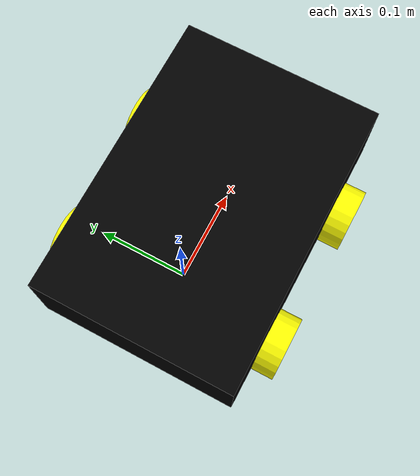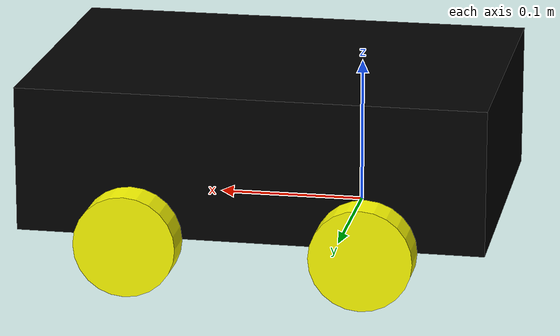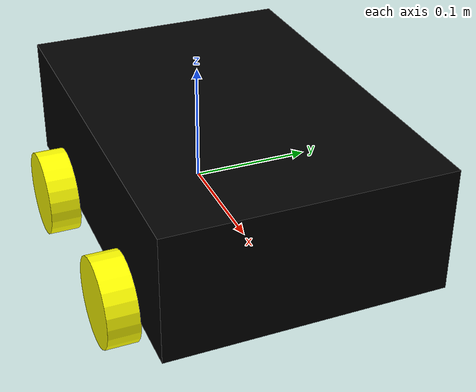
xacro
<?xml version="1.0"?>
<robot xmlns:xacro="http://www.ros.org/wiki/xacro">

    <xacro:include filename="inertial_macros.xacro"/>

    <material name="black">
        <color rgba="0 0 0 1"/>
    </material>

    <material name="yellow">
        <color rgba="1 1 0 1"/>
    </material>

    <material name="gray">
        <color rgba="0.5 0.5 0.5 1"/>
    </material>

    <material name="blue">
        <color rgba="0 0 1 1"/>
    </material>

    <material name="olive">
        <color rgba="0.5 0.5 0 1"/>
    </material>

    <!-- base_link -->
    <link name="base_link">
    </link>

    <!-- chassis -->
    <joint name="chassis_joint" type="fixed">
        <parent link="base_link"/>
        <child link="chassis_link"/>
        <origin xyz="-0.1 0 0"/>
    </joint>

    <link name="chassis_link">
        <visual>
            <geometry>
                <box size="0.32 0.22 0.10"/>
            </geometry>
            <material name="black"/>
            <origin xyz="0.16 0 0.050" rpy="0 0 0"/>
        </visual>
        <collision>
            <geometry>
                <box size="0.32 0.22 0.10"/>
            </geometry>
            <origin xyz="0.16 0 0.050" rpy="0 0 0"/>
        </collision>
        <xacro:inertial_box mass="1" x="0.32" y="0.22" z="0.10">
            <origin xyz="0.16 0 0.050" rpy="0 0 0"/>
        </xacro:inertial_box>
    </link>

    <gazebo reference="chassis_link">
        <material>Gazebo/Black</material>
    </gazebo>

    <!--Macro Wheel-->
    <xacro:macro name="wheel_link" params="prefix place">
        <link name="${prefix}_wheel_${place}_link">
            <visual>
                <geometry>
                    <cylinder radius="0.035" length="0.025" />
                </geometry>
                <material name="yellow" />
            </visual>
            <collision>
                <geometry>
                    <cylinder radius="0.035" length="0.025" />
                </geometry>
                <origin xyz="0 0 0" rpy="0 0 0" />
            </collision>
            <xacro:inertial_cylinder mass="0.2" length="0.025" radius="0.035">
                <origin xyz="0 0 0" rpy="0 0 0" />
            </xacro:inertial_cylinder>
        </link>

        <gazebo reference="${prefix}_wheel_${place}_link">
            <material>Gazebo/Yellow</material>
        </gazebo>
    </xacro:macro>

    <!--Left Wheel Front-->
    <joint name="left_wheel_front_joint" type="continuous">
        <parent link="base_link" />
        <child link="left_wheel_front_link" />
        <origin xyz="0.14 0.122 0" rpy="${pi/2} 0 0" />
        <axis xyz="0 0 1" />
    </joint>

    <xacro:wheel_link prefix="left" place="front" />

    <!--Left Wheel back-->
    <joint name="left_wheel_back_joint" type="continuous">
        <parent link="base_link" />
        <child link="left_wheel_back_link" />
        <origin xyz="-0.02 0.122 0" rpy="${pi/2} 0 0" />
        <axis xyz="0 0 1" />
    </joint>

    <xacro:wheel_link prefix="left" place="back" />

    <!--Right Wheel Front-->
    <joint name="right_wheel_front_joint" type="continuous">
        <parent link="base_link" />
        <child link="right_wheel_front_link" />
        <origin xyz="0.14 -0.122 0" rpy="${pi/2} 0 0" />
        <axis xyz="0 0 -1" />
    </joint>

    <xacro:wheel_link prefix="right" place="front" />

    <!--Right Wheel Back-->
    <joint name="right_wheel_back_joint" type="continuous">
        <parent link="base_link" />
        <child link="right_wheel_back_link" />
        <origin xyz="-0.02 -0.122 0" rpy="${pi/2} 0 0" />
        <axis xyz="0 0 -1" />
    </joint>

    <xacro:wheel_link prefix="right" place="back" />

</robot>
